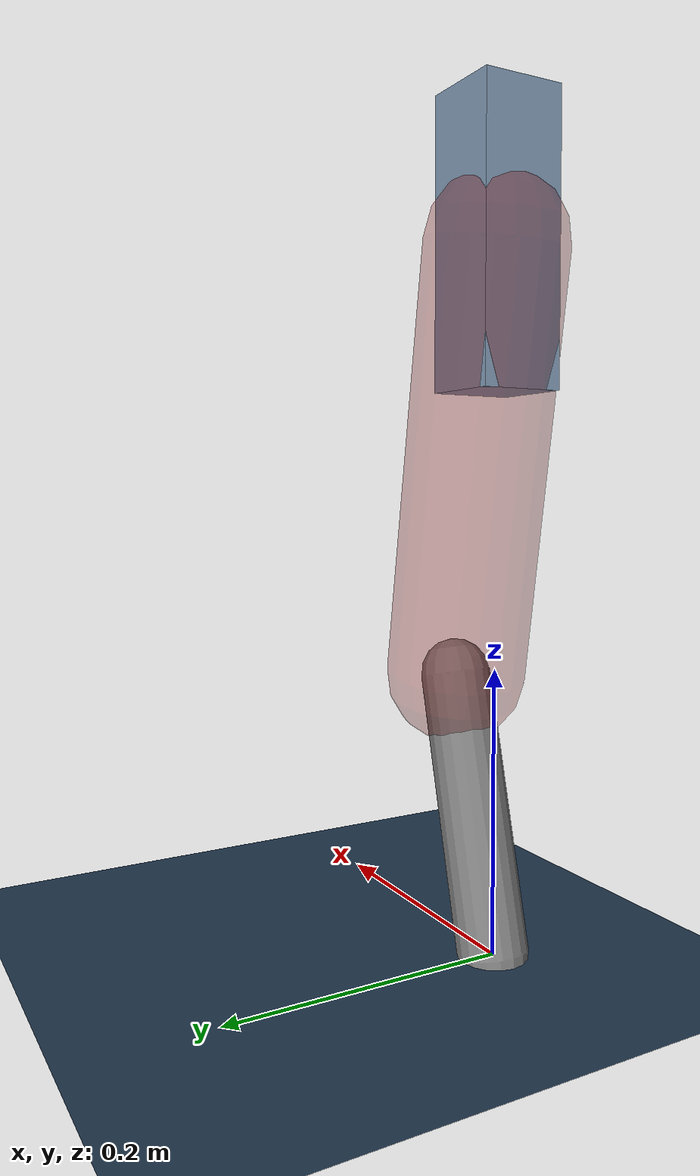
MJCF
<mujoco model="Hopper2D">
	<compiler inertiafromgeom="true" angle="radian" />
	<option timestep="0.001" integrator="implicit" cone="elliptic" solver="Newton" tolerance="1e-10" />

	<default>
		<geom contype="1" conaffinity="1" condim="3" friction="2 0.005 0.0001" solref="0.005 1" />
		<joint limited="true" damping="0.1" />
	</default>

	<asset>
		<texture name="skybox" type="skybox" builtin="gradient" rgb1=".4 .6 .8" rgb2="0 0 0" width="800" height="800" />
		<texture name="grid" type="2d" builtin="checker" rgb1=".1 .2 .3" rgb2=".2 .3 .4" width="300" height="300" mark="edge" markrgb=".2 .3 .4" />
		<material name="ground" texture="grid" texrepeat="1 1" texuniform="true" reflectance="0.1" />
		<material name="leg" rgba="0.5 0.6 0.7 1" />
	</asset>

	<worldbody>

		<geom name="floor" type="plane" size="5 5 0.25" material="ground" />

		<light directional="false" diffuse="0.8 0.8 0.8" specular="0.3 0.3 0.3" pos="0 0 2" dir="0 0 -1" />
		<light mode="targetbodycom" target="base" directional="false" diffuse="0.8 0.8 0.8" specular="0.3 0.3 0.3" pos="0 0 2" dir="0 0 -1" />

		<camera name="fixed" pos="0 -2 1" xyaxes="1 0 0 0 0 1" />
		<camera name="tracking" mode="trackcom" pos="0 -3 1" />

		<body name="root" pos="0 0 0.4897417629417733">
			<joint name="slide_x" type="slide" axis="1 0 0" range="-100 100" />
			<joint name="slide_z" type="slide" axis="0 0 1" range="0 10" />

			<body name="base" pos="0 0 0">
				<geom name="torso" type="box" size="0.03 0.03 0.1" mass="2.591" material="leg" />

				<body name="link1" pos="0 0 0" euler="0 1.409776747557308 0">
					<joint type="hinge" axis="0 -1 0" pos="0 0 0" name="hinge1" limited="true" range="-3.14 3.14" stiffness="0" damping="0.1" />
					<geom name="thigh" type="capsule" fromto="0 0 0 0.3028696841472872 0 0" size="0.05" rgba="0.5 0 0 0.3" mass="0.9965351156124043" />

					<body name="link2" pos="0.3028696841472872 0 0" euler="0 0.41023619678010087 0">
						<joint type="hinge" axis="0 -1 0" pos="0 0 0" name="hinge2" limited="true" range="-3.14 3.14" stiffness="0" damping="0.1" />
						<geom name="shank" type="capsule" fromto="0 0 0 0.1968720787944861 0 0" size="0.025" mass="0.39828487091503745" />

					</body>
				</body>
			</body>
		</body>
	</worldbody>

	<actuator>
		<motor name="torque1" joint="hinge1" ctrlrange="-116.38997937371055 116.38997937371055" ctrllimited="true" gear="1" />
		<motor name="torque2" joint="hinge2" ctrlrange="-81.31608740653742 81.31608740653742" ctrllimited="true" gear="1" />
	</actuator>
</mujoco>
